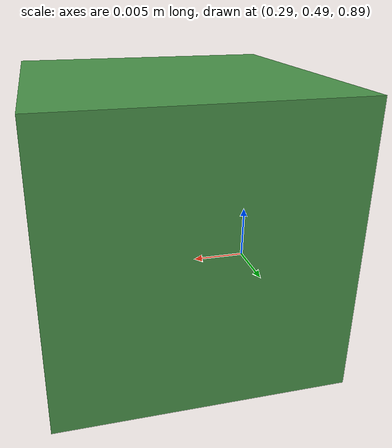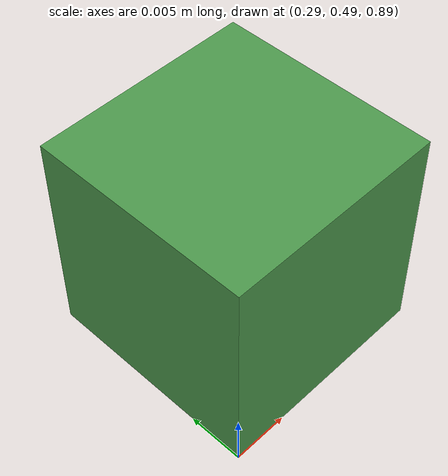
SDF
<?xml version="1.0"?>
<sdf version="1.6">
  <world name="default">
    <include>
      <uri>model://ground_plane</uri>
    </include>

    <include>
      <uri>model://sun</uri>
    </include>

    <include>
        <uri>model://box1</uri>
	<name>box1</name>
        <pose>0.3 0.5 0.9 0 0 0</pose>
    </include>
  </world>
</sdf>

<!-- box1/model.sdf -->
<sdf version='1.6'>
  <model name='box1'>
    <pose>1 2 0 0 0 0</pose>
    <link name='link'>
      <inertial>
        <mass>0.00937500</mass>
        <inertia>
          <!-- inertias are tricky to compute -->

          <ixx>0.00000391</ixx> <!-- for a box: ixx = 0.083 * mass * (y*y + z*z) -->
          <ixy>0</ixy> <!-- for a box: ixy = 0 -->
          <ixz>0</ixz> <!-- for a box: ixz = 0 -->
          <iyy>0.00000391</iyy> <!-- for a box: iyy = 0.083 * mass * (x*x + z*z) -->
          <iyz>0</iyz> <!-- for a box: iyz = 0 -->
          <izz>0.00000391</izz> <!-- for a box: izz = 0.083 * mass * (x*x + y*y) -->
        </inertia>
      </inertial>
      <pose>0 0 0 0 0 0</pose>
      <collision name='collision'>
        <geometry>
          <box>
            <size>0.02 0.02 0.02</size>
          </box>
        </geometry>
        <surface>
          <friction>
            <ode>
              <mu>100000.0</mu>
              <mu2>10000.0</mu2>
            </ode>
          </friction>
          <contact>
            <ode>
              <kp>10000000.0</kp>
              <kd>1.0</kd>
              <min_depth>0.001</min_depth>
              <max_vel>0.1</max_vel>
            </ode>
          </contact>
        </surface>
      </collision>
      <visual name='visual'>
        <material>
          <ambient>0.3 0.6 0.3 1</ambient>
          <diffuse>0.3 0.6 0.3 1</diffuse>
        </material>
        <geometry>
          <box>
            <size>0.02 0.02 0.02</size>
          </box>
        </geometry>
      </visual>
    </link>
    <plugin name='get_cubes_info' filename='libget_cubes_info.so' />
  </model>
</sdf>
